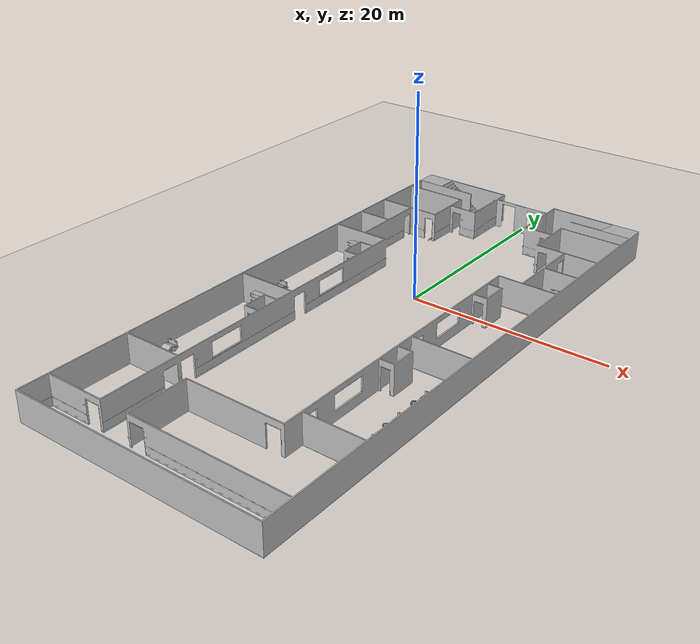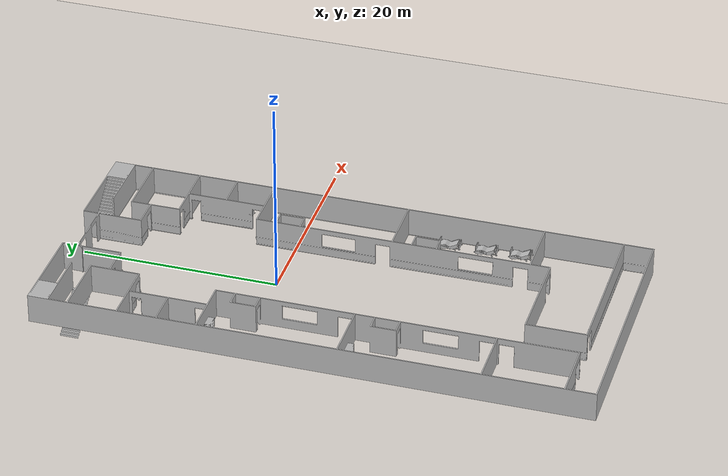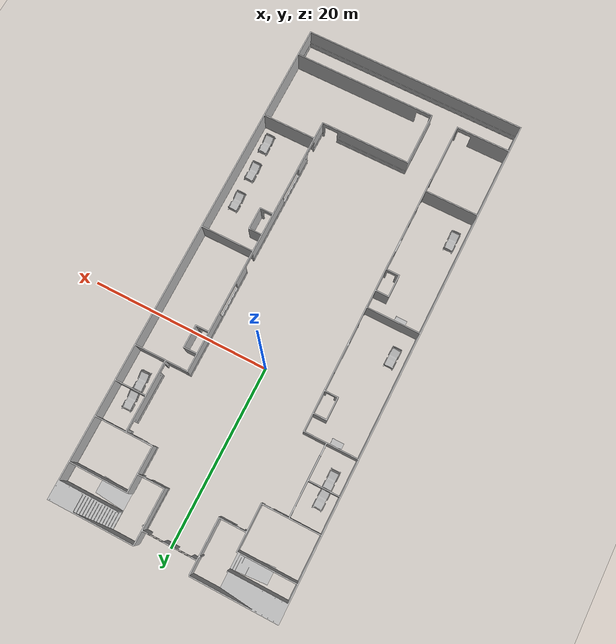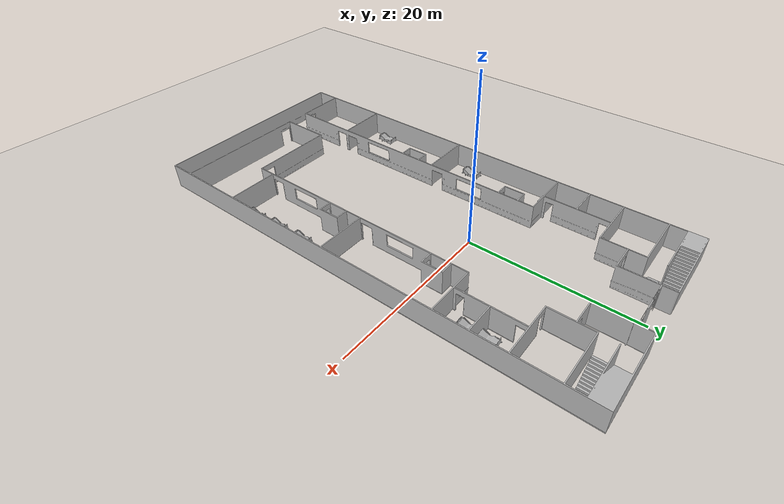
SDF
<sdf version="1.7">
 <world name="world">
  <gravity>0 0 -9.8</gravity>
  <physics name="default_physics" default="0" type="ode">
   <max_step_size>0.001</max_step_size>
   <real_time_factor>1</real_time_factor>
   <real_time_update_rate>1000</real_time_update_rate>
  </physics>
  <scene><ambient>0.6 0.6 0.6 1</ambient><background>0.4 0.4 0.4 1</background><shadows>0</shadows></scene>
  <light name="sun" type="directional">
   <pose>0 0 10 0 -0 0</pose>
   <diffuse>0.8 0.8 0.8 1</diffuse>
   <specular>0.2 0.2 0.2 1</specular>
   <attenuation>
    <range>1000</range>
    <constant>0.9</constant>
    <linear>0.01</linear>
    <quadratic>0.001</quadratic>
   </attenuation>
   <direction>-0.5 0.1 -0.9</direction>
   <spot><inner_angle>0</inner_angle><outer_angle>0</outer_angle><falloff>0</falloff></spot>
  </light>
  <model name="ground_plane">
   <static>1</static>
   <link name="link">
    <collision name="collision">
     <geometry><plane><normal>0 0 1</normal><size>100 100</size></plane></geometry>
     <surface>
      <contact><collide_bitmask>65535</collide_bitmask></contact>
      <friction><ode><mu>100</mu><mu2>50</mu2></ode></friction>
     </surface>
    </collision>
    <visual name="visual">
     <cast_shadows>0</cast_shadows>
     <geometry><plane><normal>0 0 1</normal><size>100 100</size></plane></geometry>
     <material>
      <script><uri>file://media/materials/scripts/gazebo.material</uri><name>Gazebo/Grey</name></script>
     </material>
    </visual>
   </link>
   <pose>0 0 -0.1 0 -0 0</pose>
  </model>
  <model name="aws_robomaker_hospital_floor_01_walls_1">
   <pose>0.051994 0.082857 -0.159763 -1.57244 0.008667 0.002876</pose>
   <frame name="aws_robomaker_hospital_floor_01_walls::__model__" attached_to="aws_robomaker_hospital_floor_01_walls::link">
    <pose relative_to="__model__">-0.013823 -0.013783 0 0 -0 0</pose>
   </frame>
   <link name="aws_robomaker_hospital_floor_01_walls::link">
    <visual name="visual">
     <geometry>
      <mesh>
       <uri>model://aws_robomaker_hospital_floor_01_walls/meshes/aws_robomaker_hospital_floor_01_walls_visual.dae</uri>
      </mesh>
     </geometry>
    </visual>
    <collision name="collision">
     <geometry>
      <mesh>
       <uri>model://aws_robomaker_hospital_floor_01_walls/meshes/aws_robomaker_hospital_floor_01_walls_collision.dae</uri>
      </mesh>
     </geometry>
    </collision>
    <pose relative_to="aws_robomaker_hospital_floor_01_walls::__model__">0 0 0 0 -0 0</pose>
   </link>
   <static>1</static>
  </model>
  <model name="CGMClassic_1">
   <frame name="CGMClassic::__model__" attached_to="CGMClassic::body">
    <pose relative_to="__model__">11.1777 -18.4129 0 0 0 -3.13719</pose>
   </frame>
   <static>1</static>
   <link name="CGMClassic::body">
    <pose relative_to="CGMClassic::__model__">0 0 0 0 -0 0</pose>
    <visual name="visual">
     <geometry>
      <mesh><uri>model://CGMClassic/meshes/CGMClassic.obj</uri><scale>0.01 0.01 0.01</scale></mesh>
     </geometry>
    </visual>
    <collision name="collision">
     <geometry>
      <mesh><uri>model://CGMClassic/meshes/CGMClassic.obj</uri><scale>0.01 0.01 0.01</scale></mesh>
     </geometry>
    </collision>
   </link>
  </model>
  <model name="CGMClassic_2">
   <frame name="CGMClassic::__model__" attached_to="CGMClassic::body">
    <pose relative_to="__model__">11.1179 -14.6493 0 0 0 -3.13599</pose>
   </frame>
   <static>1</static>
   <link name="CGMClassic::body">
    <pose relative_to="CGMClassic::__model__">0 0 0 0 -0 0</pose>
    <visual name="visual">
     <geometry>
      <mesh><uri>model://CGMClassic/meshes/CGMClassic.obj</uri><scale>0.01 0.01 0.01</scale></mesh>
     </geometry>
    </visual>
    <collision name="collision">
     <geometry>
      <mesh><uri>model://CGMClassic/meshes/CGMClassic.obj</uri><scale>0.01 0.01 0.01</scale></mesh>
     </geometry>
    </collision>
   </link>
  </model>
  <model name="CGMClassic_3">
   <frame name="CGMClassic::__model__" attached_to="CGMClassic::body">
    <pose relative_to="__model__">-11.2304 -21.1134 0 0 0 -3.11834</pose>
   </frame>
   <static>1</static>
   <link name="CGMClassic::body">
    <pose relative_to="CGMClassic::__model__">0 0 0 0 -0 0</pose>
    <visual name="visual">
     <geometry>
      <mesh><uri>model://CGMClassic/meshes/CGMClassic.obj</uri><scale>0.01 0.01 0.01</scale></mesh>
     </geometry>
    </visual>
    <collision name="collision">
     <geometry>
      <mesh><uri>model://CGMClassic/meshes/CGMClassic.obj</uri><scale>0.01 0.01 0.01</scale></mesh>
     </geometry>
    </collision>
   </link>
  </model>
  <model name="CGMClassic_4">
   <frame name="CGMClassic::__model__" attached_to="CGMClassic::body">
    <pose relative_to="__model__">-11.0878 -7.00992 0 0 -0 3.1351</pose>
   </frame>
   <static>1</static>
   <link name="CGMClassic::body">
    <pose relative_to="CGMClassic::__model__">0 0 0 0 -0 0</pose>
    <visual name="visual">
     <geometry>
      <mesh><uri>model://CGMClassic/meshes/CGMClassic.obj</uri><scale>0.01 0.01 0.01</scale></mesh>
     </geometry>
    </visual>
    <collision name="collision">
     <geometry>
      <mesh><uri>model://CGMClassic/meshes/CGMClassic.obj</uri><scale>0.01 0.01 0.01</scale></mesh>
     </geometry>
    </collision>
   </link>
  </model>
  <model name="CGMClassic_5">
   <frame name="CGMClassic::__model__" attached_to="CGMClassic::body">
    <pose relative_to="__model__">-11.0106 8.9505 -0.008203 -0.035019 -0.000392 3.13388</pose>
   </frame>
   <static>1</static>
   <link name="CGMClassic::body">
    <pose relative_to="CGMClassic::__model__">0 0 0 0 -0 0</pose>
    <visual name="visual">
     <geometry>
      <mesh><uri>model://CGMClassic/meshes/CGMClassic.obj</uri><scale>0.01 0.01 0.01</scale></mesh>
     </geometry>
    </visual>
    <collision name="collision">
     <geometry>
      <mesh><uri>model://CGMClassic/meshes/CGMClassic.obj</uri><scale>0.01 0.01 0.01</scale></mesh>
     </geometry>
    </collision>
   </link>
  </model>
  <model name="CGMClassic_6">
   <pose>0.0187 -0.16495 0 0 -0 0</pose>
   <frame name="CGMClassic::__model__" attached_to="CGMClassic::body">
    <pose relative_to="__model__">-11.025 7.10335 0 -0.035021 1.8e-05 -3.13762</pose>
   </frame>
   <static>1</static>
   <link name="CGMClassic::body">
    <pose relative_to="CGMClassic::__model__">0 0 0 0 -0 0</pose>
    <visual name="visual">
     <geometry>
      <mesh><uri>model://CGMClassic/meshes/CGMClassic.obj</uri><scale>0.01 0.01 0.01</scale></mesh>
     </geometry>
    </visual>
    <collision name="collision">
     <geometry>
      <mesh><uri>model://CGMClassic/meshes/CGMClassic.obj</uri><scale>0.01 0.01 0.01</scale></mesh>
     </geometry>
    </collision>
   </link>
  </model>
  <model name="CGMClassic_7">
   <frame name="CGMClassic::__model__" attached_to="CGMClassic::body">
    <pose relative_to="__model__">10.6166 9.06291 -0.008203 -0.03501 0.000885 -3.11285</pose>
   </frame>
   <static>1</static>
   <link name="CGMClassic::body">
    <pose relative_to="CGMClassic::__model__">0 0 0 0 -0 0</pose>
    <visual name="visual">
     <geometry>
      <mesh><uri>model://CGMClassic/meshes/CGMClassic.obj</uri><scale>0.01 0.01 0.01</scale></mesh>
     </geometry>
    </visual>
    <collision name="collision">
     <geometry>
      <mesh><uri>model://CGMClassic/meshes/CGMClassic.obj</uri><scale>0.01 0.01 0.01</scale></mesh>
     </geometry>
    </collision>
   </link>
  </model>
  <model name="CGMClassic_8">
   <frame name="CGMClassic::__model__" attached_to="CGMClassic::body">
    <pose relative_to="__model__">10.6006 6.90956 -0.008203 -0.035003 0.001133 -3.10576</pose>
   </frame>
   <static>1</static>
   <link name="CGMClassic::body">
    <pose relative_to="CGMClassic::__model__">0 0 0 0 -0 0</pose>
    <visual name="visual">
     <geometry>
      <mesh><uri>model://CGMClassic/meshes/CGMClassic.obj</uri><scale>0.01 0.01 0.01</scale></mesh>
     </geometry>
    </visual>
    <collision name="collision">
     <geometry>
      <mesh><uri>model://CGMClassic/meshes/CGMClassic.obj</uri><scale>0.01 0.01 0.01</scale></mesh>
     </geometry>
    </collision>
   </link>
  </model>
  <model name="CGMClassic_9">
   <frame name="CGMClassic::__model__" attached_to="CGMClassic::body">
    <pose relative_to="__model__">11.3613 -21.8867 0 0 0 -3.12292</pose>
   </frame>
   <static>1</static>
   <link name="CGMClassic::body">
    <pose relative_to="CGMClassic::__model__">0 0 0 0 -0 0</pose>
    <visual name="visual">
     <geometry>
      <mesh><uri>model://CGMClassic/meshes/CGMClassic.obj</uri><scale>0.01 0.01 0.01</scale></mesh>
     </geometry>
    </visual>
    <collision name="collision">
     <geometry>
      <mesh><uri>model://CGMClassic/meshes/CGMClassic.obj</uri><scale>0.01 0.01 0.01</scale></mesh>
     </geometry>
    </collision>
   </link>
  </model>
  <model name="StorageRack_3">
   <frame name="StorageRack::__model__" attached_to="StorageRack::link">
    <pose relative_to="__model__">-10.1178 -10.4694 -0 0 -0 0</pose>
   </frame>
   <link name="StorageRack::link">
    <pose relative_to="StorageRack::__model__">0 0 0 0 -0 0</pose>
    <visual name="visual">
     <geometry><mesh><uri>model://StorageRack/meshes/StorageRack.obj</uri></mesh></geometry>
    </visual>
    <collision name="collision">
     <geometry><mesh><uri>model://StorageRack/meshes/StorageRack.obj</uri></mesh></geometry>
    </collision>
   </link>
   <static>1</static>
  </model>
  <model name="StorageRack_4">
   <frame name="StorageRack::__model__" attached_to="StorageRack::link">
    <pose relative_to="__model__">-9.91557 3.5644 -9e-06 1e-06 1e-06 -0.000273</pose>
   </frame>
   <link name="StorageRack::link">
    <pose relative_to="StorageRack::__model__">0 0 0 0 -0 0</pose>
    <visual name="visual">
     <geometry><mesh><uri>model://StorageRack/meshes/StorageRack.obj</uri></mesh></geometry>
    </visual>
    <collision name="collision">
     <geometry><mesh><uri>model://StorageRack/meshes/StorageRack.obj</uri></mesh></geometry>
    </collision>
   </link>
   <static>1</static>
  </model>
  <magnetic_field>6e-06 2.3e-05 -4.2e-05</magnetic_field>
  <atmosphere type="adiabatic"/>
  <spherical_coordinates>
   <surface_model>EARTH_WGS84</surface_model>
   <latitude_deg>0</latitude_deg>
   <longitude_deg>0</longitude_deg>
   <elevation>0</elevation>
   <heading_deg>0</heading_deg>
  </spherical_coordinates>
 </world>
</sdf>
